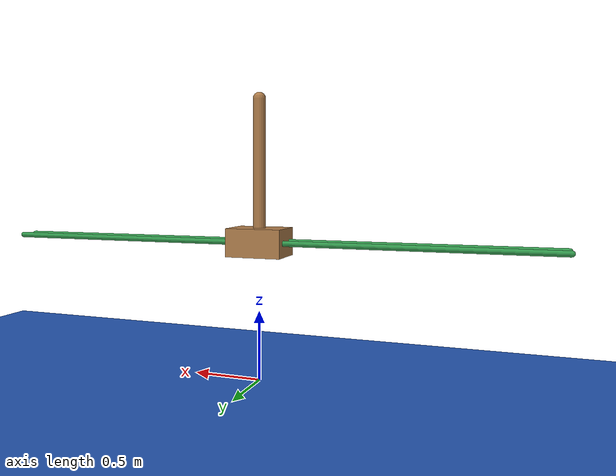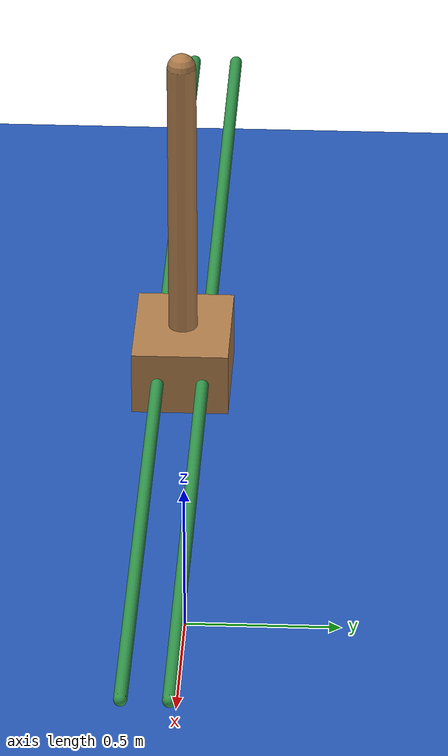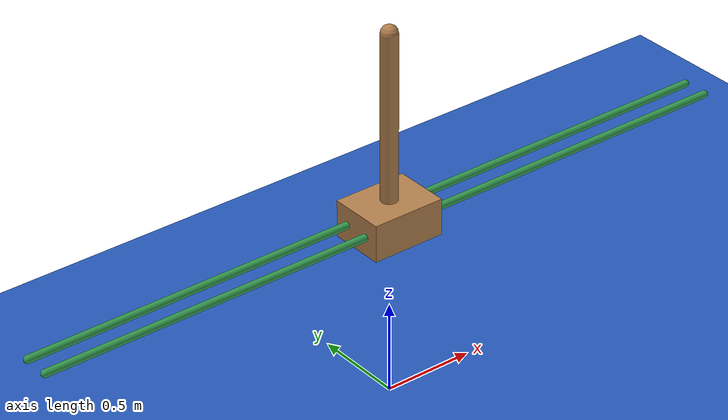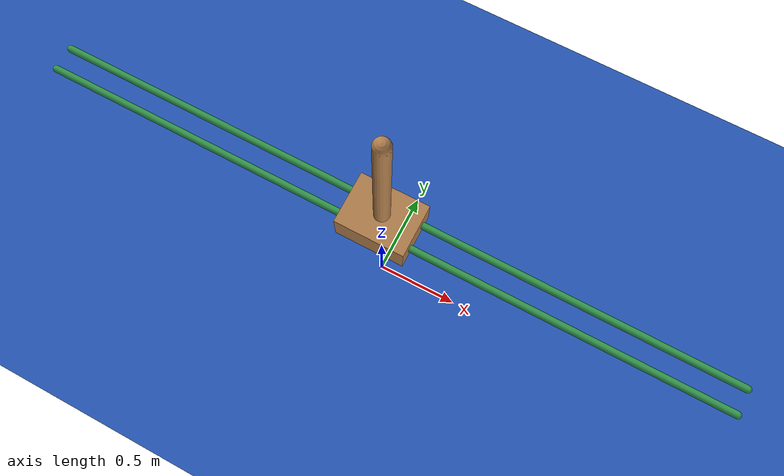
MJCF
<mujoco model="Cart-Pole Swing-Up">
  <include file="../common.xml"/>
  <!-- modified from: https://github.com/google-deepmind/dm_control/blob/main/dm_control/suite/cartpole.xml -->
  <include file="cartpole_modified.xml" />

  <size memory="4K"/>

  <custom>
    <!-- agent -->
    <numeric name="agent_planner" data="0" />
    <numeric name="agent_horizon" data="1.0" />
    <numeric name="agent_timestep" data="0.01" />
    <numeric name="sampling_sample_width" data="0.01" />
    <numeric name="sampling_control_width" data="0.015" />
    <numeric name="sampling_spline_points" data="10" />
    <numeric name="sampling_exploration" data="0.5" />
    <numeric name="gradient_spline_points" data="10" />
    <numeric name="residual_Goal" data="0.0 -1.5 1.5" />

    <!-- estimator -->
    <numeric name="estimator" data="0" />
    <numeric name="estimator_sensor_start" data="4" />
    <numeric name="estimator_number_sensor" data="2" />
    <numeric name="estimator_timestep" data="0.005" />
    <numeric name="batch_configuration_length" data="3" />
    <numeric name="batch_scale_prior" data="1.0e-3" />
  </custom>

  <sensor>
    <!-- cost -->
    <user name="Vertical" dim="1" user="6 10.0 0 100.0 0.01"/>
    <user name="Centered" dim="1" user="6 10.0 0 100.0 0.1"/>
    <user name="Velocity" dim="1" user="0 0.1 0.0 1.0"/>
    <user name="Control" dim="1" user="0 0.1 0.0 1.0"/>

    <!-- estimator -->
    <jointpos name="slider_pos" joint="slider"/>
    <jointpos name="hinge_pos" joint="hinge_1"/>

    <!-- trace -->
    <framepos name="trace0" objtype="site" objname="tip"/>

    <!-- residual -->
    <framepos name="position" objtype="site" objname="tip"/>
    <framelinvel name="velocity" objtype="site" objname="tip"/>
  </sensor>
  <keyframe>
    <key name="home" qpos="1 0" />
  </keyframe>
</mujoco>

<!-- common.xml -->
<mujoco>

  <visual>
    <headlight ambient=".4 .4 .4" diffuse=".8 .8 .8" specular="0.1 0.1 0.1"/>
    <map znear=".01"/>
    <quality shadowsize="2048"/>
    <global elevation="-15"/>
  </visual>

  <asset>
    <texture name="blue_grid" type="2d" builtin="checker" rgb1=".02 .14 .44" rgb2=".27 .55 1" width="300" height="300" mark="edge" markrgb="1 1 1"/>
    <material name="blue_grid" texture="blue_grid" texrepeat="1 1" texuniform="true" reflectance=".2"/>

    <texture name="grey_grid" type="2d" builtin="checker" rgb1=".26 .26 .26" rgb2=".6 .6 .6" width="300" height="300" mark="edge" markrgb="1 1 1"/>
    <material name="grey_grid" texture="grey_grid" texrepeat="1 1" texuniform="true" reflectance=".2"/>
    <texture name="skybox" type="skybox" builtin="gradient" rgb1=".66 .79 1" rgb2=".9 .91 .93" width="800" height="800"/>

    <material name="self" rgba=".7 .5 .3 1"/>
    <material name="self_default" rgba=".7 .5 .3 1"/>
    <material name="self_highlight" rgba="0 .5 .3 1"/>
    <material name="effector" rgba=".7 .4 .2 1"/>
    <material name="effector_default" rgba=".7 .4 .2 1"/>
    <material name="effector_highlight" rgba="0 .5 .3 1"/>
    <material name="decoration" rgba=".2 .6 .3 1"/>
    <material name="eye" rgba="0 .2 1 1"/>
    <material name="target" rgba=".6 .3 .3 1"/>
    <material name="target_default" rgba=".6 .3 .3 1"/>
    <material name="target_highlight" rgba=".6 .3 .3 .4"/>
    <material name="site" rgba=".5 .5 .5 .3"/>
  </asset>
</mujoco>

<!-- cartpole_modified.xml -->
<mujoco model="Cartpole">
  <option timestep="0.01"> <!-- modified from 0.001 to 0.01 to match dm_control -->
    <flag contact="disable"/>
  </option>

  <default>
    <default class="pole">
      <joint type="hinge" axis="0 1 0"  damping="2e-6"/>
      <geom type="capsule" fromto="0 0 0 0 0 1" size="0.045" material="self" mass=".1"/>
    </default>
  </default>

  <worldbody>
    <light name="light" pos="0 0 6"/>
    <camera name="fixed" pos="0 -4 1" zaxis="0 -1 0"/>
    <camera name="lookatcart" mode="targetbody" target="cart" pos="0 -2 2"/>
    <geom name="floor" pos="0 0 -.05" size="4 4 .2" type="plane" material="blue_grid"/>
    <geom name="rail1" type="capsule" pos="0  .07 1" zaxis="1 0 0" size="0.02 2" material="decoration" />
    <geom name="rail2" type="capsule" pos="0 -.07 1" zaxis="1 0 0" size="0.02 2" material="decoration" />
    <body name="cart" pos="0 0 1">
      <joint name="slider" type="slide" limited="true" axis="1 0 0" range="-1.8 1.8" solreflimit=".08 1" damping="1.0e-4"/>
      <geom name="cart" type="box" size="0.2 0.15 0.1" material="self"  mass="1"/>
      <body name="pole_1" childclass="pole">
        <joint name="hinge_1" damping="1.0e-4"/>
        <geom name="pole_1"/>
        <site name="tip" pos="0 0 1"/>
      </body>
    </body>
  </worldbody>

  <actuator>
    <motor name="slide" joint="slider" gear="10" ctrllimited="true" ctrlrange="-1 1" />
  </actuator>
</mujoco>
